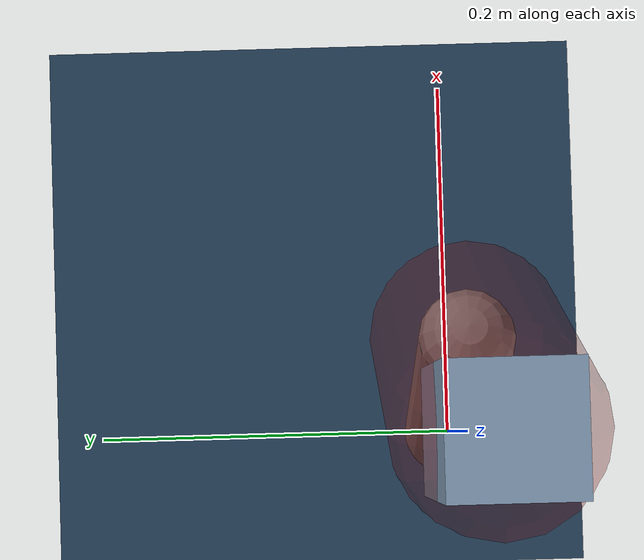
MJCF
<mujoco model="Hopper2D">
	<compiler inertiafromgeom="true" angle="radian" />
	<option timestep="0.001" integrator="implicit" cone="elliptic" solver="Newton" tolerance="1e-10" />

	<default>
		<geom contype="1" conaffinity="1" condim="3" friction="2 0.005 0.0001" solref="0.005 1" />
		<joint limited="true" damping="0.1" />
	</default>

	<asset>
		<texture name="skybox" type="skybox" builtin="gradient" rgb1=".4 .6 .8" rgb2="0 0 0" width="800" height="800" />
		<texture name="grid" type="2d" builtin="checker" rgb1=".1 .2 .3" rgb2=".2 .3 .4" width="300" height="300" mark="edge" markrgb=".2 .3 .4" />
		<material name="ground" texture="grid" texrepeat="1 1" texuniform="true" reflectance="0.1" />
		<material name="leg" rgba="0.5 0.6 0.7 1" />
	</asset>

	<worldbody>

		<geom name="floor" type="plane" size="5 5 0.25" material="ground" />

		<light directional="false" diffuse="0.8 0.8 0.8" specular="0.3 0.3 0.3" pos="0 0 2" dir="0 0 -1" />
		<light mode="targetbodycom" target="base" directional="false" diffuse="0.8 0.8 0.8" specular="0.3 0.3 0.3" pos="0 0 2" dir="0 0 -1" />

		<camera name="fixed" pos="0 -2 1" xyaxes="1 0 0 0 0 1" />
		<camera name="tracking" mode="trackcom" pos="0 -3 1" />

		<body name="root" pos="0 0 0.45281957719913835">
			<joint name="slide_x" type="slide" axis="1 0 0" range="-100 100" />
			<joint name="slide_z" type="slide" axis="0 0 1" range="0 10" />

			<body name="base" pos="0 0 0">
				<geom name="torso" type="box" size="0.03 0.03 0.1" mass="4.595" material="leg" />

				<body name="link1" pos="0 0 0" euler="0 1.36515790919043 0">
					<joint type="hinge" axis="0 -1 0" pos="0 0 0" name="hinge1" limited="true" range="-3.14 3.14" stiffness="0" damping="0.1" />
					<geom name="thigh" type="capsule" fromto="0 0 0 0.23429223925823833 0 0" size="0.05" rgba="0.5 0 0 0.3" mass="0.8159598220714197" />

					<body name="link2" pos="0.23429223925823833 0 0" euler="0 0.4165416285694562 0">
						<joint type="hinge" axis="0 -1 0" pos="0 0 0" name="hinge2" limited="true" range="-3.14 3.14" stiffness="0" damping="0.1" />
						<geom name="shank" type="capsule" fromto="0 0 0 0.22852733794090002 0 0" size="0.025" mass="0.42477460414681" />

					</body>
				</body>
			</body>
		</body>
	</worldbody>

	<actuator>
		<motor name="torque1" joint="hinge1" ctrlrange="-169.17163065738015 169.17163065738015" ctrllimited="true" gear="1" />
		<motor name="torque2" joint="hinge2" ctrlrange="-193.03548045323757 193.03548045323757" ctrllimited="true" gear="1" />
	</actuator>
</mujoco>
